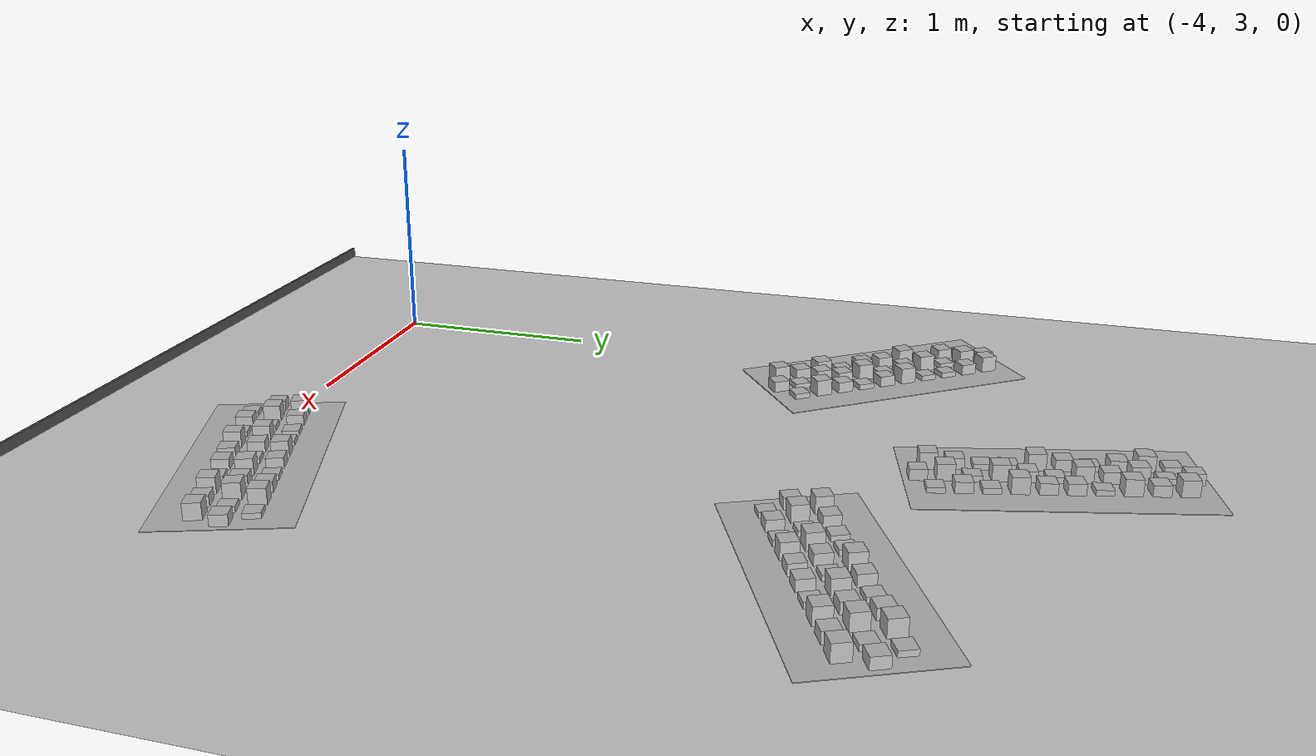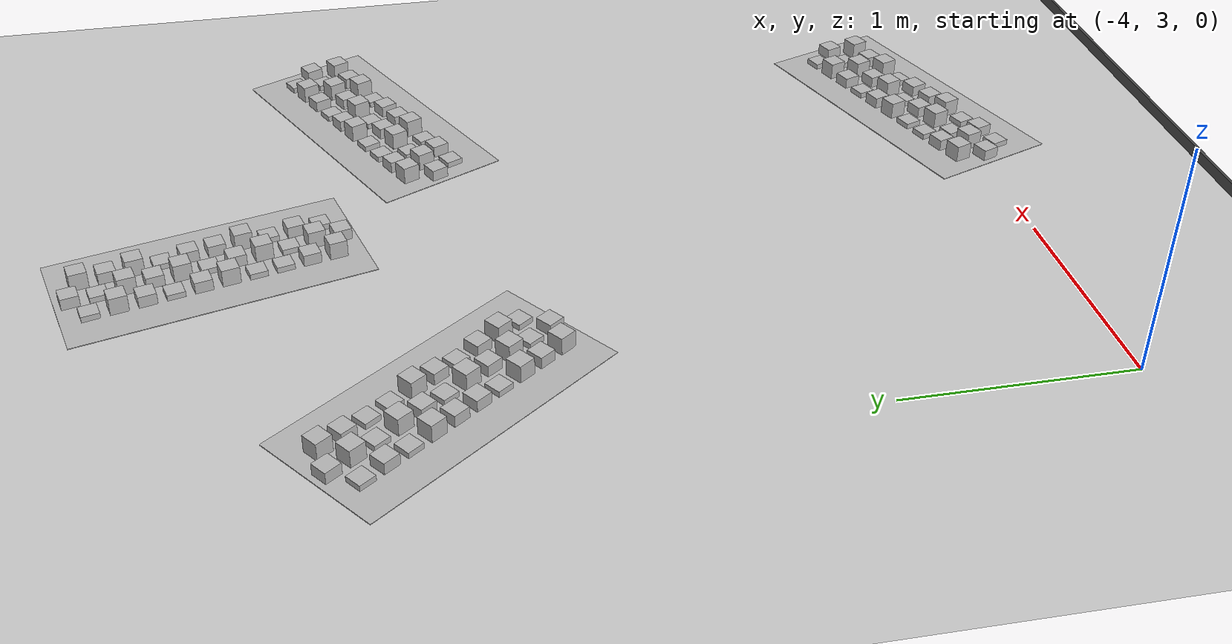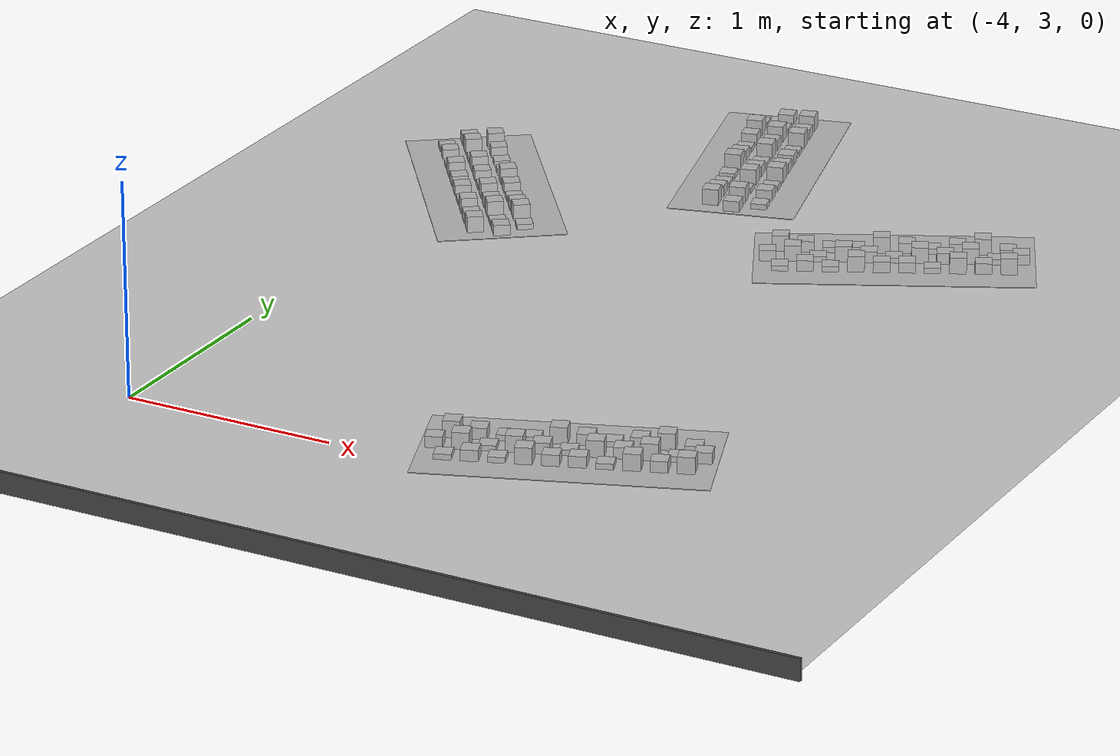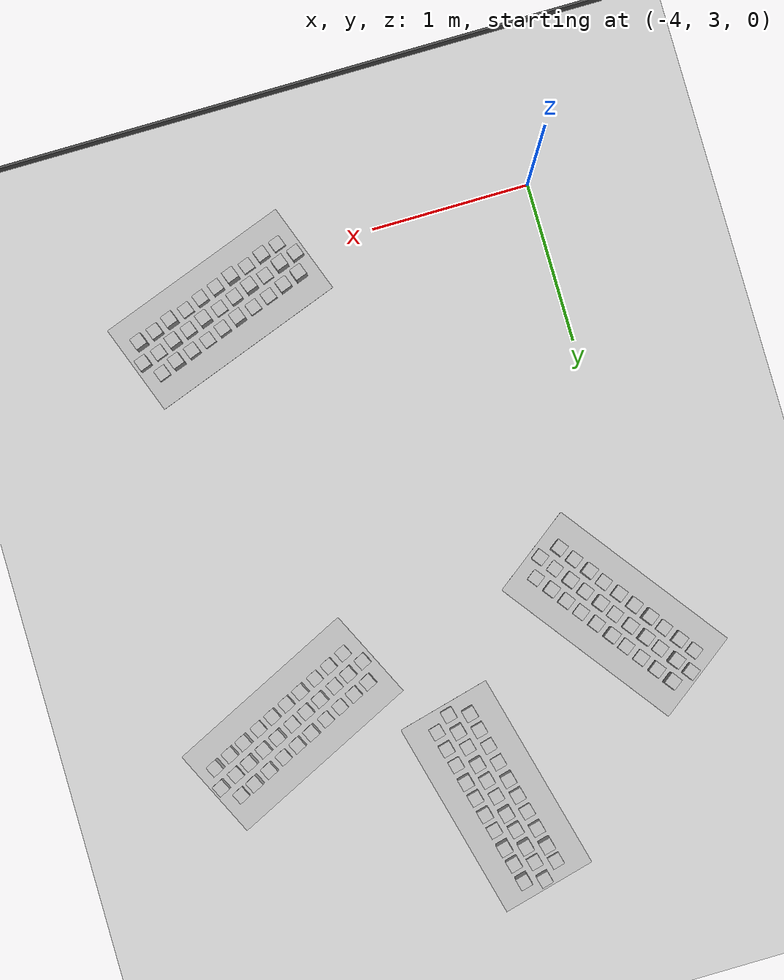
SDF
<sdf version="1.6">
 <world name="default">
  <model name="ground_plane">
   <static>1</static>
   <link name="link">
    <collision name="collision">
     <geometry><plane><normal>0 0 1</normal><size>100 100</size></plane></geometry>
     <surface>
      <contact><collide_bitmask>65535</collide_bitmask></contact>
      <friction><ode><mu>100</mu><mu2>50</mu2></ode></friction>
     </surface>
    </collision>
    <visual name="visual">
     <cast_shadows>0</cast_shadows>
     <geometry><plane><normal>0 0 1</normal><size>100 100</size></plane></geometry>
     <material>
      <script><uri>file://media/materials/scripts/gazebo.material</uri><name>Gazebo/Grey</name></script>
     </material>
    </visual>
   </link>
  </model>
  <model name="frc2016_roughterrain_clone_clone_12_clone_clone_clone_clone_clone_1">
   <static>1</static>
   <link name="link">
    <visual name="platform">
     <pose>0 0 0.08269 0 -0 0</pose>
     <geometry><box><size>1.27 0.5969 0.003175</size></box></geometry>
    </visual>
    <collision name="platform">
     <pose>0 0 0.08269 0 -0 0</pose>
     <geometry><box><size>1.27 0.5969 0.003175</size></box></geometry>
    </collision>
    <visual name="row1_block1_sm">
     <pose>0.51435 0.1143 0.09698 0 -0 0</pose>
     <geometry><box><size>0.0762 0.0762 0.0254</size></box></geometry>
    </visual>
    <collision name="row1_block1_sm">
     <pose>0.51435 0.1143 0.09698 0 -0 0</pose>
     <geometry><box><size>0.0762 0.0762 0.0254</size></box></geometry>
    </collision>
    <visual name="row1_block2_lg">
     <pose>0.40005 0.1143 0.12238 0 -0 0</pose>
     <geometry><box><size>0.0762 0.0762 0.0762</size></box></geometry>
    </visual>
    <collision name="row1_block2_lg">
     <pose>0.40005 0.1143 0.12238 0 -0 0</pose>
     <geometry><box><size>0.0762 0.0762 0.0762</size></box></geometry>
    </collision>
    <visual name="row1_block3_md">
     <pose>0.28575 0.1143 0.10968 0 -0 0</pose>
     <geometry><box><size>0.0762 0.0762 0.0508</size></box></geometry>
    </visual>
    <collision name="row1_block3_md">
     <pose>0.28575 0.1143 0.10968 0 -0 0</pose>
     <geometry><box><size>0.0762 0.0762 0.0508</size></box></geometry>
    </collision>
    <visual name="row1_block4_sm">
     <pose>0.17145 0.1143 0.09698 0 -0 0</pose>
     <geometry><box><size>0.0762 0.0762 0.0254</size></box></geometry>
    </visual>
    <collision name="row1_block4_sm">
     <pose>0.17145 0.1143 0.09698 0 -0 0</pose>
     <geometry><box><size>0.0762 0.0762 0.0254</size></box></geometry>
    </collision>
    <visual name="row1_block5_md">
     <pose>0.05715 0.1143 0.10968 0 -0 0</pose>
     <geometry><box><size>0.0762 0.0762 0.0508</size></box></geometry>
    </visual>
    <collision name="row1_block5_md">
     <pose>0.05715 0.1143 0.10968 0 -0 0</pose>
     <geometry><box><size>0.0762 0.0762 0.0508</size></box></geometry>
    </collision>
    <visual name="row1_block6_lg">
     <pose>-0.05715 0.1143 0.12238 0 -0 0</pose>
     <geometry><box><size>0.0762 0.0762 0.0762</size></box></geometry>
    </visual>
    <collision name="row1_block6_lg">
     <pose>-0.05715 0.1143 0.12238 0 -0 0</pose>
     <geometry><box><size>0.0762 0.0762 0.0762</size></box></geometry>
    </collision>
    <visual name="row1_block7_sm">
     <pose>-0.17145 0.1143 0.09698 0 -0 0</pose>
     <geometry><box><size>0.0762 0.0762 0.0254</size></box></geometry>
    </visual>
    <collision name="row1_block7_sm">
     <pose>-0.17145 0.1143 0.09698 0 -0 0</pose>
     <geometry><box><size>0.0762 0.0762 0.0254</size></box></geometry>
    </collision>
    <visual name="row1_block8_sm">
     <pose>-0.28575 0.1143 0.09698 0 -0 0</pose>
     <geometry><box><size>0.0762 0.0762 0.0254</size></box></geometry>
    </visual>
    <collision name="row1_block8_sm">
     <pose>-0.28575 0.1143 0.09698 0 -0 0</pose>
     <geometry><box><size>0.0762 0.0762 0.0254</size></box></geometry>
    </collision>
    <visual name="row1_block9_md">
     <pose>-0.40005 0.1143 0.10968 0 -0 0</pose>
     <geometry><box><size>0.0762 0.0762 0.0508</size></box></geometry>
    </visual>
    <collision name="row1_block9_md">
     <pose>-0.40005 0.1143 0.10968 0 -0 0</pose>
     <geometry><box><size>0.0762 0.0762 0.0508</size></box></geometry>
    </collision>
    <visual name="row1_block10_lg">
     <pose>-0.51435 0.1143 0.12238 0 -0 0</pose>
     <geometry><box><size>0.0762 0.0762 0.0762</size></box></geometry>
    </visual>
    <collision name="row1_block10_lg">
     <pose>-0.51435 0.1143 0.12238 0 -0 0</pose>
     <geometry><box><size>0.0762 0.0762 0.0762</size></box></geometry>
    </collision>
    <visual name="row2_block1_md">
     <pose>0.5715 0 0.10968 0 -0 0</pose>
     <geometry><box><size>0.0762 0.0762 0.0508</size></box></geometry>
    </visual>
    <collision name="row2_block1_md">
     <pose>0.5715 0 0.10968 0 -0 0</pose>
     <geometry><box><size>0.0762 0.0762 0.0508</size></box></geometry>
    </collision>
    <visual name="row2_block2_sm">
     <pose>0.4572 0 0.09698 0 -0 0</pose>
     <geometry><box><size>0.0762 0.0762 0.0254</size></box></geometry>
    </visual>
    <collision name="row2_block2_sm">
     <pose>0.4572 0 0.09698 0 -0 0</pose>
     <geometry><box><size>0.0762 0.0762 0.0254</size></box></geometry>
    </collision>
    <visual name="row2_block3_lg">
     <pose>0.3429 0 0.12238 0 -0 0</pose>
     <geometry><box><size>0.0762 0.0762 0.0762</size></box></geometry>
    </visual>
    <collision name="row2_block3_lg">
     <pose>0.3429 0 0.12238 0 -0 0</pose>
     <geometry><box><size>0.0762 0.0762 0.0762</size></box></geometry>
    </collision>
    <visual name="row2_block4_md">
     <pose>0.2286 0 0.10968 0 -0 0</pose>
     <geometry><box><size>0.0762 0.0762 0.0508</size></box></geometry>
    </visual>
    <collision name="row2_block4_md">
     <pose>0.2286 0 0.10968 0 -0 0</pose>
     <geometry><box><size>0.0762 0.0762 0.0508</size></box></geometry>
    </collision>
    <visual name="row2_block5_lg">
     <pose>0.1143 0 0.12238 0 -0 0</pose>
     <geometry><box><size>0.0762 0.0762 0.0762</size></box></geometry>
    </visual>
    <collision name="row2_block5_lg">
     <pose>0.1143 0 0.12238 0 -0 0</pose>
     <geometry><box><size>0.0762 0.0762 0.0762</size></box></geometry>
    </collision>
    <visual name="row2_block6_sm">
     <pose>0 0 0.09698 0 -0 0</pose>
     <geometry><box><size>0.0762 0.0762 0.0254</size></box></geometry>
    </visual>
    <collision name="row2_block6_sm">
     <pose>0 0 0.09698 0 -0 0</pose>
     <geometry><box><size>0.0762 0.0762 0.0254</size></box></geometry>
    </collision>
    <visual name="row2_block7_md">
     <pose>-0.1143 0 0.10968 0 -0 0</pose>
     <geometry><box><size>0.0762 0.0762 0.0508</size></box></geometry>
    </visual>
    <collision name="row2_block7_md">
     <pose>-0.1143 0 0.10968 0 -0 0</pose>
     <geometry><box><size>0.0762 0.0762 0.0508</size></box></geometry>
    </collision>
    <visual name="row2_block8_lg">
     <pose>-0.2286 0 0.12238 0 -0 0</pose>
     <geometry><box><size>0.0762 0.0762 0.0762</size></box></geometry>
    </visual>
    <collision name="row2_block8_lg">
     <pose>-0.2286 0 0.12238 0 -0 0</pose>
     <geometry><box><size>0.0762 0.0762 0.0762</size></box></geometry>
    </collision>
    <visual name="row2_block9_sm">
     <pose>-0.3429 0 0.09698 0 -0 0</pose>
     <geometry><box><size>0.0762 0.0762 0.0254</size></box></geometry>
    </visual>
    <collision name="row2_block9_sm">
     <pose>-0.3429 0 0.09698 0 -0 0</pose>
     <geometry><box><size>0.0762 0.0762 0.0254</size></box></geometry>
    </collision>
    <visual name="row2_block10_lg">
     <pose>-0.4572 0 0.12238 0 -0 0</pose>
     <geometry><box><size>0.0762 0.0762 0.0762</size></box></geometry>
    </visual>
    <collision name="row2_block10_lg">
     <pose>-0.4572 0 0.12238 0 -0 0</pose>
     <geometry><box><size>0.0762 0.0762 0.0762</size></box></geometry>
    </collision>
    <visual name="row2_block11_md">
     <pose>-0.5715 0 0.10968 0 -0 0</pose>
     <geometry><box><size>0.0762 0.0762 0.0508</size></box></geometry>
    </visual>
    <collision name="row2_block11_md">
     <pose>-0.5715 0 0.10968 0 -0 0</pose>
     <geometry><box><size>0.0762 0.0762 0.0508</size></box></geometry>
    </collision>
    <visual name="row3_block1_lg">
     <pose>0.51435 -0.1143 0.12238 0 -0 0</pose>
     <geometry><box><size>0.0762 0.0762 0.0762</size></box></geometry>
    </visual>
    <collision name="row3_block1_lg">
     <pose>0.51435 -0.1143 0.12238 0 -0 0</pose>
     <geometry><box><size>0.0762 0.0762 0.0762</size></box></geometry>
    </collision>
    <visual name="row3_block2_md">
     <pose>0.40005 -0.1143 0.10968 0 -0 0</pose>
     <geometry><box><size>0.0762 0.0762 0.0508</size></box></geometry>
    </visual>
    <collision name="row3_block2_md">
     <pose>0.40005 -0.1143 0.10968 0 -0 0</pose>
     <geometry><box><size>0.0762 0.0762 0.0508</size></box></geometry>
    </collision>
    <visual name="row3_block3_lg">
     <pose>0.28575 -0.1143 0.12238 0 -0 0</pose>
     <geometry><box><size>0.0762 0.0762 0.0762</size></box></geometry>
    </visual>
    <collision name="row3_block3_lg">
     <pose>0.28575 -0.1143 0.12238 0 -0 0</pose>
     <geometry><box><size>0.0762 0.0762 0.0762</size></box></geometry>
    </collision>
    <visual name="row3_block4_sm">
     <pose>0.17145 -0.1143 0.09698 0 -0 0</pose>
     <geometry><box><size>0.0762 0.0762 0.0254</size></box></geometry>
    </visual>
    <collision name="row3_block4_sm">
     <pose>0.17145 -0.1143 0.09698 0 -0 0</pose>
     <geometry><box><size>0.0762 0.0762 0.0254</size></box></geometry>
    </collision>
    <visual name="row3_block5_md">
     <pose>0.05715 -0.1143 0.10968 0 -0 0</pose>
     <geometry><box><size>0.0762 0.0762 0.0508</size></box></geometry>
    </visual>
    <collision name="row3_block5_md">
     <pose>0.05715 -0.1143 0.10968 0 -0 0</pose>
     <geometry><box><size>0.0762 0.0762 0.0508</size></box></geometry>
    </collision>
    <visual name="row3_block6_md">
     <pose>-0.05715 -0.1143 0.10968 0 -0 0</pose>
     <geometry><box><size>0.0762 0.0762 0.0508</size></box></geometry>
    </visual>
    <collision name="row3_block6_md">
     <pose>-0.05715 -0.1143 0.10968 0 -0 0</pose>
     <geometry><box><size>0.0762 0.0762 0.0508</size></box></geometry>
    </collision>
    <visual name="row3_block7_lg">
     <pose>-0.17145 -0.1143 0.12238 0 -0 0</pose>
     <geometry><box><size>0.0762 0.0762 0.0762</size></box></geometry>
    </visual>
    <collision name="row3_block7_lg">
     <pose>-0.17145 -0.1143 0.12238 0 -0 0</pose>
     <geometry><box><size>0.0762 0.0762 0.0762</size></box></geometry>
    </collision>
    <visual name="row3_block8_sm">
     <pose>-0.28575 -0.1143 0.09698 0 -0 0</pose>
     <geometry><box><size>0.0762 0.0762 0.0254</size></box></geometry>
    </visual>
    <collision name="row3_block8_sm">
     <pose>-0.28575 -0.1143 0.09698 0 -0 0</pose>
     <geometry><box><size>0.0762 0.0762 0.0254</size></box></geometry>
    </collision>
    <visual name="row3_block9_md">
     <pose>-0.40005 -0.1143 0.10968 0 -0 0</pose>
     <geometry><box><size>0.0762 0.0762 0.0508</size></box></geometry>
    </visual>
    <collision name="row3_block9_md">
     <pose>-0.40005 -0.1143 0.10968 0 -0 0</pose>
     <geometry><box><size>0.0762 0.0762 0.0508</size></box></geometry>
    </collision>
    <visual name="row3_block10_sm">
     <pose>-0.51435 -0.1143 0.09698 0 -0 0</pose>
     <geometry><box><size>0.0762 0.0762 0.0254</size></box></geometry>
    </visual>
    <collision name="row3_block10_sm">
     <pose>-0.51435 -0.1143 0.09698 0 -0 0</pose>
     <geometry><box><size>0.0762 0.0762 0.0254</size></box></geometry>
    </collision>
   </link>
   <pose>-1.96655 3.23326 0 0 -0 0.35</pose>
  </model>
  <model name="frc2016_roughterrain_clone_clone_12_clone_clone_clone_clone_0_clone">
   <static>1</static>
   <link name="link">
    <visual name="platform">
     <pose>0 0 0.08269 0 -0 0</pose>
     <geometry><box><size>1.27 0.5969 0.003175</size></box></geometry>
    </visual>
    <collision name="platform">
     <pose>0 0 0.08269 0 -0 0</pose>
     <geometry><box><size>1.27 0.5969 0.003175</size></box></geometry>
    </collision>
    <visual name="row1_block1_sm">
     <pose>0.51435 0.1143 0.09698 0 -0 0</pose>
     <geometry><box><size>0.0762 0.0762 0.0254</size></box></geometry>
    </visual>
    <collision name="row1_block1_sm">
     <pose>0.51435 0.1143 0.09698 0 -0 0</pose>
     <geometry><box><size>0.0762 0.0762 0.0254</size></box></geometry>
    </collision>
    <visual name="row1_block2_lg">
     <pose>0.40005 0.1143 0.12238 0 -0 0</pose>
     <geometry><box><size>0.0762 0.0762 0.0762</size></box></geometry>
    </visual>
    <collision name="row1_block2_lg">
     <pose>0.40005 0.1143 0.12238 0 -0 0</pose>
     <geometry><box><size>0.0762 0.0762 0.0762</size></box></geometry>
    </collision>
    <visual name="row1_block3_md">
     <pose>0.28575 0.1143 0.10968 0 -0 0</pose>
     <geometry><box><size>0.0762 0.0762 0.0508</size></box></geometry>
    </visual>
    <collision name="row1_block3_md">
     <pose>0.28575 0.1143 0.10968 0 -0 0</pose>
     <geometry><box><size>0.0762 0.0762 0.0508</size></box></geometry>
    </collision>
    <visual name="row1_block4_sm">
     <pose>0.17145 0.1143 0.09698 0 -0 0</pose>
     <geometry><box><size>0.0762 0.0762 0.0254</size></box></geometry>
    </visual>
    <collision name="row1_block4_sm">
     <pose>0.17145 0.1143 0.09698 0 -0 0</pose>
     <geometry><box><size>0.0762 0.0762 0.0254</size></box></geometry>
    </collision>
    <visual name="row1_block5_md">
     <pose>0.05715 0.1143 0.10968 0 -0 0</pose>
     <geometry><box><size>0.0762 0.0762 0.0508</size></box></geometry>
    </visual>
    <collision name="row1_block5_md">
     <pose>0.05715 0.1143 0.10968 0 -0 0</pose>
     <geometry><box><size>0.0762 0.0762 0.0508</size></box></geometry>
    </collision>
    <visual name="row1_block6_lg">
     <pose>-0.05715 0.1143 0.12238 0 -0 0</pose>
     <geometry><box><size>0.0762 0.0762 0.0762</size></box></geometry>
    </visual>
    <collision name="row1_block6_lg">
     <pose>-0.05715 0.1143 0.12238 0 -0 0</pose>
     <geometry><box><size>0.0762 0.0762 0.0762</size></box></geometry>
    </collision>
    <visual name="row1_block7_sm">
     <pose>-0.17145 0.1143 0.09698 0 -0 0</pose>
     <geometry><box><size>0.0762 0.0762 0.0254</size></box></geometry>
    </visual>
    <collision name="row1_block7_sm">
     <pose>-0.17145 0.1143 0.09698 0 -0 0</pose>
     <geometry><box><size>0.0762 0.0762 0.0254</size></box></geometry>
    </collision>
    <visual name="row1_block8_sm">
     <pose>-0.28575 0.1143 0.09698 0 -0 0</pose>
     <geometry><box><size>0.0762 0.0762 0.0254</size></box></geometry>
    </visual>
    <collision name="row1_block8_sm">
     <pose>-0.28575 0.1143 0.09698 0 -0 0</pose>
     <geometry><box><size>0.0762 0.0762 0.0254</size></box></geometry>
    </collision>
    <visual name="row1_block9_md">
     <pose>-0.40005 0.1143 0.10968 0 -0 0</pose>
     <geometry><box><size>0.0762 0.0762 0.0508</size></box></geometry>
    </visual>
    <collision name="row1_block9_md">
     <pose>-0.40005 0.1143 0.10968 0 -0 0</pose>
     <geometry><box><size>0.0762 0.0762 0.0508</size></box></geometry>
    </collision>
    <visual name="row1_block10_lg">
     <pose>-0.51435 0.1143 0.12238 0 -0 0</pose>
     <geometry><box><size>0.0762 0.0762 0.0762</size></box></geometry>
    </visual>
    <collision name="row1_block10_lg">
     <pose>-0.51435 0.1143 0.12238 0 -0 0</pose>
     <geometry><box><size>0.0762 0.0762 0.0762</size></box></geometry>
    </collision>
    <visual name="row2_block1_md">
     <pose>0.5715 0 0.10968 0 -0 0</pose>
     <geometry><box><size>0.0762 0.0762 0.0508</size></box></geometry>
    </visual>
    <collision name="row2_block1_md">
     <pose>0.5715 0 0.10968 0 -0 0</pose>
     <geometry><box><size>0.0762 0.0762 0.0508</size></box></geometry>
    </collision>
    <visual name="row2_block2_sm">
     <pose>0.4572 0 0.09698 0 -0 0</pose>
     <geometry><box><size>0.0762 0.0762 0.0254</size></box></geometry>
    </visual>
    <collision name="row2_block2_sm">
     <pose>0.4572 0 0.09698 0 -0 0</pose>
     <geometry><box><size>0.0762 0.0762 0.0254</size></box></geometry>
    </collision>
    <visual name="row2_block3_lg">
     <pose>0.3429 0 0.12238 0 -0 0</pose>
     <geometry><box><size>0.0762 0.0762 0.0762</size></box></geometry>
    </visual>
    <collision name="row2_block3_lg">
     <pose>0.3429 0 0.12238 0 -0 0</pose>
     <geometry><box><size>0.0762 0.0762 0.0762</size></box></geometry>
    </collision>
    <visual name="row2_block4_md">
     <pose>0.2286 0 0.10968 0 -0 0</pose>
     <geometry><box><size>0.0762 0.0762 0.0508</size></box></geometry>
    </visual>
    <collision name="row2_block4_md">
     <pose>0.2286 0 0.10968 0 -0 0</pose>
     <geometry><box><size>0.0762 0.0762 0.0508</size></box></geometry>
    </collision>
    <visual name="row2_block5_lg">
     <pose>0.1143 0 0.12238 0 -0 0</pose>
     <geometry><box><size>0.0762 0.0762 0.0762</size></box></geometry>
    </visual>
    <collision name="row2_block5_lg">
     <pose>0.1143 0 0.12238 0 -0 0</pose>
     <geometry><box><size>0.0762 0.0762 0.0762</size></box></geometry>
    </collision>
    <visual name="row2_block6_sm">
     <pose>0 0 0.09698 0 -0 0</pose>
     <geometry><box><size>0.0762 0.0762 0.0254</size></box></geometry>
    </visual>
    <collision name="row2_block6_sm">
     <pose>0 0 0.09698 0 -0 0</pose>
     <geometry><box><size>0.0762 0.0762 0.0254</size></box></geometry>
    </collision>
    <visual name="row2_block7_md">
     <pose>-0.1143 0 0.10968 0 -0 0</pose>
     <geometry><box><size>0.0762 0.0762 0.0508</size></box></geometry>
    </visual>
    <collision name="row2_block7_md">
     <pose>-0.1143 0 0.10968 0 -0 0</pose>
     <geometry><box><size>0.0762 0.0762 0.0508</size></box></geometry>
    </collision>
    <visual name="row2_block8_lg">
     <pose>-0.2286 0 0.12238 0 -0 0</pose>
     <geometry><box><size>0.0762 0.0762 0.0762</size></box></geometry>
    </visual>
    <collision name="row2_block8_lg">
     <pose>-0.2286 0 0.12238 0 -0 0</pose>
     <geometry><box><size>0.0762 0.0762 0.0762</size></box></geometry>
    </collision>
    <visual name="row2_block9_sm">
     <pose>-0.3429 0 0.09698 0 -0 0</pose>
     <geometry><box><size>0.0762 0.0762 0.0254</size></box></geometry>
    </visual>
    <collision name="row2_block9_sm">
     <pose>-0.3429 0 0.09698 0 -0 0</pose>
     <geometry><box><size>0.0762 0.0762 0.0254</size></box></geometry>
    </collision>
    <visual name="row2_block10_lg">
     <pose>-0.4572 0 0.12238 0 -0 0</pose>
     <geometry><box><size>0.0762 0.0762 0.0762</size></box></geometry>
    </visual>
    <collision name="row2_block10_lg">
     <pose>-0.4572 0 0.12238 0 -0 0</pose>
     <geometry><box><size>0.0762 0.0762 0.0762</size></box></geometry>
    </collision>
    <visual name="row2_block11_md">
     <pose>-0.5715 0 0.10968 0 -0 0</pose>
     <geometry><box><size>0.0762 0.0762 0.0508</size></box></geometry>
    </visual>
    <collision name="row2_block11_md">
     <pose>-0.5715 0 0.10968 0 -0 0</pose>
     <geometry><box><size>0.0762 0.0762 0.0508</size></box></geometry>
    </collision>
    <visual name="row3_block1_lg">
     <pose>0.51435 -0.1143 0.12238 0 -0 0</pose>
     <geometry><box><size>0.0762 0.0762 0.0762</size></box></geometry>
    </visual>
    <collision name="row3_block1_lg">
     <pose>0.51435 -0.1143 0.12238 0 -0 0</pose>
     <geometry><box><size>0.0762 0.0762 0.0762</size></box></geometry>
    </collision>
    <visual name="row3_block2_md">
     <pose>0.40005 -0.1143 0.10968 0 -0 0</pose>
     <geometry><box><size>0.0762 0.0762 0.0508</size></box></geometry>
    </visual>
    <collision name="row3_block2_md">
     <pose>0.40005 -0.1143 0.10968 0 -0 0</pose>
     <geometry><box><size>0.0762 0.0762 0.0508</size></box></geometry>
    </collision>
    <visual name="row3_block3_lg">
     <pose>0.28575 -0.1143 0.12238 0 -0 0</pose>
     <geometry><box><size>0.0762 0.0762 0.0762</size></box></geometry>
    </visual>
    <collision name="row3_block3_lg">
     <pose>0.28575 -0.1143 0.12238 0 -0 0</pose>
     <geometry><box><size>0.0762 0.0762 0.0762</size></box></geometry>
    </collision>
    <visual name="row3_block4_sm">
     <pose>0.17145 -0.1143 0.09698 0 -0 0</pose>
     <geometry><box><size>0.0762 0.0762 0.0254</size></box></geometry>
    </visual>
    <collision name="row3_block4_sm">
     <pose>0.17145 -0.1143 0.09698 0 -0 0</pose>
     <geometry><box><size>0.0762 0.0762 0.0254</size></box></geometry>
    </collision>
    <visual name="row3_block5_md">
     <pose>0.05715 -0.1143 0.10968 0 -0 0</pose>
     <geometry><box><size>0.0762 0.0762 0.0508</size></box></geometry>
    </visual>
    <collision name="row3_block5_md">
     <pose>0.05715 -0.1143 0.10968 0 -0 0</pose>
     <geometry><box><size>0.0762 0.0762 0.0508</size></box></geometry>
    </collision>
    <visual name="row3_block6_md">
     <pose>-0.05715 -0.1143 0.10968 0 -0 0</pose>
     <geometry><box><size>0.0762 0.0762 0.0508</size></box></geometry>
    </visual>
    <collision name="row3_block6_md">
     <pose>-0.05715 -0.1143 0.10968 0 -0 0</pose>
     <geometry><box><size>0.0762 0.0762 0.0508</size></box></geometry>
    </collision>
    <visual name="row3_block7_lg">
     <pose>-0.17145 -0.1143 0.12238 0 -0 0</pose>
     <geometry><box><size>0.0762 0.0762 0.0762</size></box></geometry>
    </visual>
    <collision name="row3_block7_lg">
     <pose>-0.17145 -0.1143 0.12238 0 -0 0</pose>
     <geometry><box><size>0.0762 0.0762 0.0762</size></box></geometry>
    </collision>
    <visual name="row3_block8_sm">
     <pose>-0.28575 -0.1143 0.09698 0 -0 0</pose>
     <geometry><box><size>0.0762 0.0762 0.0254</size></box></geometry>
    </visual>
    <collision name="row3_block8_sm">
     <pose>-0.28575 -0.1143 0.09698 0 -0 0</pose>
     <geometry><box><size>0.0762 0.0762 0.0254</size></box></geometry>
    </collision>
    <visual name="row3_block9_md">
     <pose>-0.40005 -0.1143 0.10968 0 -0 0</pose>
     <geometry><box><size>0.0762 0.0762 0.0508</size></box></geometry>
    </visual>
    <collision name="row3_block9_md">
     <pose>-0.40005 -0.1143 0.10968 0 -0 0</pose>
     <geometry><box><size>0.0762 0.0762 0.0508</size></box></geometry>
    </collision>
    <visual name="row3_block10_sm">
     <pose>-0.51435 -0.1143 0.09698 0 -0 0</pose>
     <geometry><box><size>0.0762 0.0762 0.0254</size></box></geometry>
    </visual>
    <collision name="row3_block10_sm">
     <pose>-0.51435 -0.1143 0.09698 0 -0 0</pose>
     <geometry><box><size>0.0762 0.0762 0.0254</size></box></geometry>
    </collision>
   </link>
   <pose>-1.69763 5.78592 0 0 -0 0.45</pose>
  </model>
  <model name="frc2016_roughterrain_clone_clone_12_clone_clone_clone_clone_0_clone_0">
   <static>1</static>
   <link name="link">
    <visual name="platform">
     <pose>0 0 0.08269 0 -0 0</pose>
     <geometry><box><size>1.27 0.5969 0.003175</size></box></geometry>
    </visual>
    <collision name="platform">
     <pose>0 0 0.08269 0 -0 0</pose>
     <geometry><box><size>1.27 0.5969 0.003175</size></box></geometry>
    </collision>
    <visual name="row1_block1_sm">
     <pose>0.51435 0.1143 0.09698 0 -0 0</pose>
     <geometry><box><size>0.0762 0.0762 0.0254</size></box></geometry>
    </visual>
    <collision name="row1_block1_sm">
     <pose>0.51435 0.1143 0.09698 0 -0 0</pose>
     <geometry><box><size>0.0762 0.0762 0.0254</size></box></geometry>
    </collision>
    <visual name="row1_block2_lg">
     <pose>0.40005 0.1143 0.12238 0 -0 0</pose>
     <geometry><box><size>0.0762 0.0762 0.0762</size></box></geometry>
    </visual>
    <collision name="row1_block2_lg">
     <pose>0.40005 0.1143 0.12238 0 -0 0</pose>
     <geometry><box><size>0.0762 0.0762 0.0762</size></box></geometry>
    </collision>
    <visual name="row1_block3_md">
     <pose>0.28575 0.1143 0.10968 0 -0 0</pose>
     <geometry><box><size>0.0762 0.0762 0.0508</size></box></geometry>
    </visual>
    <collision name="row1_block3_md">
     <pose>0.28575 0.1143 0.10968 0 -0 0</pose>
     <geometry><box><size>0.0762 0.0762 0.0508</size></box></geometry>
    </collision>
    <visual name="row1_block4_sm">
     <pose>0.17145 0.1143 0.09698 0 -0 0</pose>
     <geometry><box><size>0.0762 0.0762 0.0254</size></box></geometry>
    </visual>
    <collision name="row1_block4_sm">
     <pose>0.17145 0.1143 0.09698 0 -0 0</pose>
     <geometry><box><size>0.0762 0.0762 0.0254</size></box></geometry>
    </collision>
    <visual name="row1_block5_md">
     <pose>0.05715 0.1143 0.10968 0 -0 0</pose>
     <geometry><box><size>0.0762 0.0762 0.0508</size></box></geometry>
    </visual>
    <collision name="row1_block5_md">
     <pose>0.05715 0.1143 0.10968 0 -0 0</pose>
     <geometry><box><size>0.0762 0.0762 0.0508</size></box></geometry>
    </collision>
    <visual name="row1_block6_lg">
     <pose>-0.05715 0.1143 0.12238 0 -0 0</pose>
     <geometry><box><size>0.0762 0.0762 0.0762</size></box></geometry>
    </visual>
    <collision name="row1_block6_lg">
     <pose>-0.05715 0.1143 0.12238 0 -0 0</pose>
     <geometry><box><size>0.0762 0.0762 0.0762</size></box></geometry>
    </collision>
    <visual name="row1_block7_sm">
     <pose>-0.17145 0.1143 0.09698 0 -0 0</pose>
     <geometry><box><size>0.0762 0.0762 0.0254</size></box></geometry>
    </visual>
    <collision name="row1_block7_sm">
     <pose>-0.17145 0.1143 0.09698 0 -0 0</pose>
     <geometry><box><size>0.0762 0.0762 0.0254</size></box></geometry>
    </collision>
    <visual name="row1_block8_sm">
     <pose>-0.28575 0.1143 0.09698 0 -0 0</pose>
     <geometry><box><size>0.0762 0.0762 0.0254</size></box></geometry>
    </visual>
    <collision name="row1_block8_sm">
     <pose>-0.28575 0.1143 0.09698 0 -0 0</pose>
     <geometry><box><size>0.0762 0.0762 0.0254</size></box></geometry>
    </collision>
    <visual name="row1_block9_md">
     <pose>-0.40005 0.1143 0.10968 0 -0 0</pose>
     <geometry><box><size>0.0762 0.0762 0.0508</size></box></geometry>
    </visual>
    <collision name="row1_block9_md">
     <pose>-0.40005 0.1143 0.10968 0 -0 0</pose>
     <geometry><box><size>0.0762 0.0762 0.0508</size></box></geometry>
    </collision>
    <visual name="row1_block10_lg">
     <pose>-0.51435 0.1143 0.12238 0 -0 0</pose>
     <geometry><box><size>0.0762 0.0762 0.0762</size></box></geometry>
    </visual>
    <collision name="row1_block10_lg">
     <pose>-0.51435 0.1143 0.12238 0 -0 0</pose>
     <geometry><box><size>0.0762 0.0762 0.0762</size></box></geometry>
    </collision>
    <visual name="row2_block1_md">
     <pose>0.5715 0 0.10968 0 -0 0</pose>
     <geometry><box><size>0.0762 0.0762 0.0508</size></box></geometry>
    </visual>
    <collision name="row2_block1_md">
     <pose>0.5715 0 0.10968 0 -0 0</pose>
     <geometry><box><size>0.0762 0.0762 0.0508</size></box></geometry>
    </collision>
    <visual name="row2_block2_sm">
     <pose>0.4572 0 0.09698 0 -0 0</pose>
     <geometry><box><size>0.0762 0.0762 0.0254</size></box></geometry>
    </visual>
    <collision name="row2_block2_sm">
     <pose>0.4572 0 0.09698 0 -0 0</pose>
     <geometry><box><size>0.0762 0.0762 0.0254</size></box></geometry>
    </collision>
    <visual name="row2_block3_lg">
     <pose>0.3429 0 0.12238 0 -0 0</pose>
     <geometry><box><size>0.0762 0.0762 0.0762</size></box></geometry>
    </visual>
    <collision name="row2_block3_lg">
     <pose>0.3429 0 0.12238 0 -0 0</pose>
     <geometry><box><size>0.0762 0.0762 0.0762</size></box></geometry>
    </collision>
    <visual name="row2_block4_md">
     <pose>0.2286 0 0.10968 0 -0 0</pose>
     <geometry><box><size>0.0762 0.0762 0.0508</size></box></geometry>
    </visual>
    <collision name="row2_block4_md">
     <pose>0.2286 0 0.10968 0 -0 0</pose>
     <geometry><box><size>0.0762 0.0762 0.0508</size></box></geometry>
    </collision>
    <visual name="row2_block5_lg">
     <pose>0.1143 0 0.12238 0 -0 0</pose>
     <geometry><box><size>0.0762 0.0762 0.0762</size></box></geometry>
    </visual>
    <collision name="row2_block5_lg">
     <pose>0.1143 0 0.12238 0 -0 0</pose>
     <geometry><box><size>0.0762 0.0762 0.0762</size></box></geometry>
    </collision>
    <visual name="row2_block6_sm">
     <pose>0 0 0.09698 0 -0 0</pose>
     <geometry><box><size>0.0762 0.0762 0.0254</size></box></geometry>
    </visual>
    <collision name="row2_block6_sm">
     <pose>0 0 0.09698 0 -0 0</pose>
     <geometry><box><size>0.0762 0.0762 0.0254</size></box></geometry>
    </collision>
    <visual name="row2_block7_md">
     <pose>-0.1143 0 0.10968 0 -0 0</pose>
     <geometry><box><size>0.0762 0.0762 0.0508</size></box></geometry>
    </visual>
    <collision name="row2_block7_md">
     <pose>-0.1143 0 0.10968 0 -0 0</pose>
     <geometry><box><size>0.0762 0.0762 0.0508</size></box></geometry>
    </collision>
    <visual name="row2_block8_lg">
     <pose>-0.2286 0 0.12238 0 -0 0</pose>
     <geometry><box><size>0.0762 0.0762 0.0762</size></box></geometry>
    </visual>
    <collision name="row2_block8_lg">
     <pose>-0.2286 0 0.12238 0 -0 0</pose>
     <geometry><box><size>0.0762 0.0762 0.0762</size></box></geometry>
    </collision>
    <visual name="row2_block9_sm">
     <pose>-0.3429 0 0.09698 0 -0 0</pose>
     <geometry><box><size>0.0762 0.0762 0.0254</size></box></geometry>
    </visual>
    <collision name="row2_block9_sm">
     <pose>-0.3429 0 0.09698 0 -0 0</pose>
     <geometry><box><size>0.0762 0.0762 0.0254</size></box></geometry>
    </collision>
    <visual name="row2_block10_lg">
     <pose>-0.4572 0 0.12238 0 -0 0</pose>
     <geometry><box><size>0.0762 0.0762 0.0762</size></box></geometry>
    </visual>
    <collision name="row2_block10_lg">
     <pose>-0.4572 0 0.12238 0 -0 0</pose>
     <geometry><box><size>0.0762 0.0762 0.0762</size></box></geometry>
    </collision>
    <visual name="row2_block11_md">
     <pose>-0.5715 0 0.10968 0 -0 0</pose>
     <geometry><box><size>0.0762 0.0762 0.0508</size></box></geometry>
    </visual>
    <collision name="row2_block11_md">
     <pose>-0.5715 0 0.10968 0 -0 0</pose>
     <geometry><box><size>0.0762 0.0762 0.0508</size></box></geometry>
    </collision>
    <visual name="row3_block1_lg">
     <pose>0.51435 -0.1143 0.12238 0 -0 0</pose>
     <geometry><box><size>0.0762 0.0762 0.0762</size></box></geometry>
    </visual>
    <collision name="row3_block1_lg">
     <pose>0.51435 -0.1143 0.12238 0 -0 0</pose>
     <geometry><box><size>0.0762 0.0762 0.0762</size></box></geometry>
    </collision>
    <visual name="row3_block2_md">
     <pose>0.40005 -0.1143 0.10968 0 -0 0</pose>
     <geometry><box><size>0.0762 0.0762 0.0508</size></box></geometry>
    </visual>
    <collision name="row3_block2_md">
     <pose>0.40005 -0.1143 0.10968 0 -0 0</pose>
     <geometry><box><size>0.0762 0.0762 0.0508</size></box></geometry>
    </collision>
    <visual name="row3_block3_lg">
     <pose>0.28575 -0.1143 0.12238 0 -0 0</pose>
     <geometry><box><size>0.0762 0.0762 0.0762</size></box></geometry>
    </visual>
    <collision name="row3_block3_lg">
     <pose>0.28575 -0.1143 0.12238 0 -0 0</pose>
     <geometry><box><size>0.0762 0.0762 0.0762</size></box></geometry>
    </collision>
    <visual name="row3_block4_sm">
     <pose>0.17145 -0.1143 0.09698 0 -0 0</pose>
     <geometry><box><size>0.0762 0.0762 0.0254</size></box></geometry>
    </visual>
    <collision name="row3_block4_sm">
     <pose>0.17145 -0.1143 0.09698 0 -0 0</pose>
     <geometry><box><size>0.0762 0.0762 0.0254</size></box></geometry>
    </collision>
    <visual name="row3_block5_md">
     <pose>0.05715 -0.1143 0.10968 0 -0 0</pose>
     <geometry><box><size>0.0762 0.0762 0.0508</size></box></geometry>
    </visual>
    <collision name="row3_block5_md">
     <pose>0.05715 -0.1143 0.10968 0 -0 0</pose>
     <geometry><box><size>0.0762 0.0762 0.0508</size></box></geometry>
    </collision>
    <visual name="row3_block6_md">
     <pose>-0.05715 -0.1143 0.10968 0 -0 0</pose>
     <geometry><box><size>0.0762 0.0762 0.0508</size></box></geometry>
    </visual>
    <collision name="row3_block6_md">
     <pose>-0.05715 -0.1143 0.10968 0 -0 0</pose>
     <geometry><box><size>0.0762 0.0762 0.0508</size></box></geometry>
    </collision>
    <visual name="row3_block7_lg">
     <pose>-0.17145 -0.1143 0.12238 0 -0 0</pose>
     <geometry><box><size>0.0762 0.0762 0.0762</size></box></geometry>
    </visual>
    <collision name="row3_block7_lg">
     <pose>-0.17145 -0.1143 0.12238 0 -0 0</pose>
     <geometry><box><size>0.0762 0.0762 0.0762</size></box></geometry>
    </collision>
    <visual name="row3_block8_sm">
     <pose>-0.28575 -0.1143 0.09698 0 -0 0</pose>
     <geometry><box><size>0.0762 0.0762 0.0254</size></box></geometry>
    </visual>
    <collision name="row3_block8_sm">
     <pose>-0.28575 -0.1143 0.09698 0 -0 0</pose>
     <geometry><box><size>0.0762 0.0762 0.0254</size></box></geometry>
    </collision>
    <visual name="row3_block9_md">
     <pose>-0.40005 -0.1143 0.10968 0 -0 0</pose>
     <geometry><box><size>0.0762 0.0762 0.0508</size></box></geometry>
    </visual>
    <collision name="row3_block9_md">
     <pose>-0.40005 -0.1143 0.10968 0 -0 0</pose>
     <geometry><box><size>0.0762 0.0762 0.0508</size></box></geometry>
    </collision>
    <visual name="row3_block10_sm">
     <pose>-0.51435 -0.1143 0.09698 0 -0 0</pose>
     <geometry><box><size>0.0762 0.0762 0.0254</size></box></geometry>
    </visual>
    <collision name="row3_block10_sm">
     <pose>-0.51435 -0.1143 0.09698 0 -0 0</pose>
     <geometry><box><size>0.0762 0.0762 0.0254</size></box></geometry>
    </collision>
   </link>
   <pose>-2.76367 6.54655 0 0 -0 1.82</pose>
  </model>
  <model name="frc2016_roughterrain_clone_clone_12_clone_clone_clone_clone_clone_clone_0_clone">
   <static>1</static>
   <link name="link">
    <visual name="platform">
     <pose>0 0 0.08269 0 -0 0</pose>
     <geometry><box><size>1.27 0.5969 0.003175</size></box></geometry>
    </visual>
    <collision name="platform">
     <pose>0 0 0.08269 0 -0 0</pose>
     <geometry><box><size>1.27 0.5969 0.003175</size></box></geometry>
    </collision>
    <visual name="row1_block1_sm">
     <pose>0.51435 0.1143 0.09698 0 -0 0</pose>
     <geometry><box><size>0.0762 0.0762 0.0254</size></box></geometry>
    </visual>
    <collision name="row1_block1_sm">
     <pose>0.51435 0.1143 0.09698 0 -0 0</pose>
     <geometry><box><size>0.0762 0.0762 0.0254</size></box></geometry>
    </collision>
    <visual name="row1_block2_lg">
     <pose>0.40005 0.1143 0.12238 0 -0 0</pose>
     <geometry><box><size>0.0762 0.0762 0.0762</size></box></geometry>
    </visual>
    <collision name="row1_block2_lg">
     <pose>0.40005 0.1143 0.12238 0 -0 0</pose>
     <geometry><box><size>0.0762 0.0762 0.0762</size></box></geometry>
    </collision>
    <visual name="row1_block3_md">
     <pose>0.28575 0.1143 0.10968 0 -0 0</pose>
     <geometry><box><size>0.0762 0.0762 0.0508</size></box></geometry>
    </visual>
    <collision name="row1_block3_md">
     <pose>0.28575 0.1143 0.10968 0 -0 0</pose>
     <geometry><box><size>0.0762 0.0762 0.0508</size></box></geometry>
    </collision>
    <visual name="row1_block4_sm">
     <pose>0.17145 0.1143 0.09698 0 -0 0</pose>
     <geometry><box><size>0.0762 0.0762 0.0254</size></box></geometry>
    </visual>
    <collision name="row1_block4_sm">
     <pose>0.17145 0.1143 0.09698 0 -0 0</pose>
     <geometry><box><size>0.0762 0.0762 0.0254</size></box></geometry>
    </collision>
    <visual name="row1_block5_md">
     <pose>0.05715 0.1143 0.10968 0 -0 0</pose>
     <geometry><box><size>0.0762 0.0762 0.0508</size></box></geometry>
    </visual>
    <collision name="row1_block5_md">
     <pose>0.05715 0.1143 0.10968 0 -0 0</pose>
     <geometry><box><size>0.0762 0.0762 0.0508</size></box></geometry>
    </collision>
    <visual name="row1_block6_lg">
     <pose>-0.05715 0.1143 0.12238 0 -0 0</pose>
     <geometry><box><size>0.0762 0.0762 0.0762</size></box></geometry>
    </visual>
    <collision name="row1_block6_lg">
     <pose>-0.05715 0.1143 0.12238 0 -0 0</pose>
     <geometry><box><size>0.0762 0.0762 0.0762</size></box></geometry>
    </collision>
    <visual name="row1_block7_sm">
     <pose>-0.17145 0.1143 0.09698 0 -0 0</pose>
     <geometry><box><size>0.0762 0.0762 0.0254</size></box></geometry>
    </visual>
    <collision name="row1_block7_sm">
     <pose>-0.17145 0.1143 0.09698 0 -0 0</pose>
     <geometry><box><size>0.0762 0.0762 0.0254</size></box></geometry>
    </collision>
    <visual name="row1_block8_sm">
     <pose>-0.28575 0.1143 0.09698 0 -0 0</pose>
     <geometry><box><size>0.0762 0.0762 0.0254</size></box></geometry>
    </visual>
    <collision name="row1_block8_sm">
     <pose>-0.28575 0.1143 0.09698 0 -0 0</pose>
     <geometry><box><size>0.0762 0.0762 0.0254</size></box></geometry>
    </collision>
    <visual name="row1_block9_md">
     <pose>-0.40005 0.1143 0.10968 0 -0 0</pose>
     <geometry><box><size>0.0762 0.0762 0.0508</size></box></geometry>
    </visual>
    <collision name="row1_block9_md">
     <pose>-0.40005 0.1143 0.10968 0 -0 0</pose>
     <geometry><box><size>0.0762 0.0762 0.0508</size></box></geometry>
    </collision>
    <visual name="row1_block10_lg">
     <pose>-0.51435 0.1143 0.12238 0 -0 0</pose>
     <geometry><box><size>0.0762 0.0762 0.0762</size></box></geometry>
    </visual>
    <collision name="row1_block10_lg">
     <pose>-0.51435 0.1143 0.12238 0 -0 0</pose>
     <geometry><box><size>0.0762 0.0762 0.0762</size></box></geometry>
    </collision>
    <visual name="row2_block1_md">
     <pose>0.5715 0 0.10968 0 -0 0</pose>
     <geometry><box><size>0.0762 0.0762 0.0508</size></box></geometry>
    </visual>
    <collision name="row2_block1_md">
     <pose>0.5715 0 0.10968 0 -0 0</pose>
     <geometry><box><size>0.0762 0.0762 0.0508</size></box></geometry>
    </collision>
    <visual name="row2_block2_sm">
     <pose>0.4572 0 0.09698 0 -0 0</pose>
     <geometry><box><size>0.0762 0.0762 0.0254</size></box></geometry>
    </visual>
    <collision name="row2_block2_sm">
     <pose>0.4572 0 0.09698 0 -0 0</pose>
     <geometry><box><size>0.0762 0.0762 0.0254</size></box></geometry>
    </collision>
    <visual name="row2_block3_lg">
     <pose>0.3429 0 0.12238 0 -0 0</pose>
     <geometry><box><size>0.0762 0.0762 0.0762</size></box></geometry>
    </visual>
    <collision name="row2_block3_lg">
     <pose>0.3429 0 0.12238 0 -0 0</pose>
     <geometry><box><size>0.0762 0.0762 0.0762</size></box></geometry>
    </collision>
    <visual name="row2_block4_md">
     <pose>0.2286 0 0.10968 0 -0 0</pose>
     <geometry><box><size>0.0762 0.0762 0.0508</size></box></geometry>
    </visual>
    <collision name="row2_block4_md">
     <pose>0.2286 0 0.10968 0 -0 0</pose>
     <geometry><box><size>0.0762 0.0762 0.0508</size></box></geometry>
    </collision>
    <visual name="row2_block5_lg">
     <pose>0.1143 0 0.12238 0 -0 0</pose>
     <geometry><box><size>0.0762 0.0762 0.0762</size></box></geometry>
    </visual>
    <collision name="row2_block5_lg">
     <pose>0.1143 0 0.12238 0 -0 0</pose>
     <geometry><box><size>0.0762 0.0762 0.0762</size></box></geometry>
    </collision>
    <visual name="row2_block6_sm">
     <pose>0 0 0.09698 0 -0 0</pose>
     <geometry><box><size>0.0762 0.0762 0.0254</size></box></geometry>
    </visual>
    <collision name="row2_block6_sm">
     <pose>0 0 0.09698 0 -0 0</pose>
     <geometry><box><size>0.0762 0.0762 0.0254</size></box></geometry>
    </collision>
    <visual name="row2_block7_md">
     <pose>-0.1143 0 0.10968 0 -0 0</pose>
     <geometry><box><size>0.0762 0.0762 0.0508</size></box></geometry>
    </visual>
    <collision name="row2_block7_md">
     <pose>-0.1143 0 0.10968 0 -0 0</pose>
     <geometry><box><size>0.0762 0.0762 0.0508</size></box></geometry>
    </collision>
    <visual name="row2_block8_lg">
     <pose>-0.2286 0 0.12238 0 -0 0</pose>
     <geometry><box><size>0.0762 0.0762 0.0762</size></box></geometry>
    </visual>
    <collision name="row2_block8_lg">
     <pose>-0.2286 0 0.12238 0 -0 0</pose>
     <geometry><box><size>0.0762 0.0762 0.0762</size></box></geometry>
    </collision>
    <visual name="row2_block9_sm">
     <pose>-0.3429 0 0.09698 0 -0 0</pose>
     <geometry><box><size>0.0762 0.0762 0.0254</size></box></geometry>
    </visual>
    <collision name="row2_block9_sm">
     <pose>-0.3429 0 0.09698 0 -0 0</pose>
     <geometry><box><size>0.0762 0.0762 0.0254</size></box></geometry>
    </collision>
    <visual name="row2_block10_lg">
     <pose>-0.4572 0 0.12238 0 -0 0</pose>
     <geometry><box><size>0.0762 0.0762 0.0762</size></box></geometry>
    </visual>
    <collision name="row2_block10_lg">
     <pose>-0.4572 0 0.12238 0 -0 0</pose>
     <geometry><box><size>0.0762 0.0762 0.0762</size></box></geometry>
    </collision>
    <visual name="row2_block11_md">
     <pose>-0.5715 0 0.10968 0 -0 0</pose>
     <geometry><box><size>0.0762 0.0762 0.0508</size></box></geometry>
    </visual>
    <collision name="row2_block11_md">
     <pose>-0.5715 0 0.10968 0 -0 0</pose>
     <geometry><box><size>0.0762 0.0762 0.0508</size></box></geometry>
    </collision>
    <visual name="row3_block1_lg">
     <pose>0.51435 -0.1143 0.12238 0 -0 0</pose>
     <geometry><box><size>0.0762 0.0762 0.0762</size></box></geometry>
    </visual>
    <collision name="row3_block1_lg">
     <pose>0.51435 -0.1143 0.12238 0 -0 0</pose>
     <geometry><box><size>0.0762 0.0762 0.0762</size></box></geometry>
    </collision>
    <visual name="row3_block2_md">
     <pose>0.40005 -0.1143 0.10968 0 -0 0</pose>
     <geometry><box><size>0.0762 0.0762 0.0508</size></box></geometry>
    </visual>
    <collision name="row3_block2_md">
     <pose>0.40005 -0.1143 0.10968 0 -0 0</pose>
     <geometry><box><size>0.0762 0.0762 0.0508</size></box></geometry>
    </collision>
    <visual name="row3_block3_lg">
     <pose>0.28575 -0.1143 0.12238 0 -0 0</pose>
     <geometry><box><size>0.0762 0.0762 0.0762</size></box></geometry>
    </visual>
    <collision name="row3_block3_lg">
     <pose>0.28575 -0.1143 0.12238 0 -0 0</pose>
     <geometry><box><size>0.0762 0.0762 0.0762</size></box></geometry>
    </collision>
    <visual name="row3_block4_sm">
     <pose>0.17145 -0.1143 0.09698 0 -0 0</pose>
     <geometry><box><size>0.0762 0.0762 0.0254</size></box></geometry>
    </visual>
    <collision name="row3_block4_sm">
     <pose>0.17145 -0.1143 0.09698 0 -0 0</pose>
     <geometry><box><size>0.0762 0.0762 0.0254</size></box></geometry>
    </collision>
    <visual name="row3_block5_md">
     <pose>0.05715 -0.1143 0.10968 0 -0 0</pose>
     <geometry><box><size>0.0762 0.0762 0.0508</size></box></geometry>
    </visual>
    <collision name="row3_block5_md">
     <pose>0.05715 -0.1143 0.10968 0 -0 0</pose>
     <geometry><box><size>0.0762 0.0762 0.0508</size></box></geometry>
    </collision>
    <visual name="row3_block6_md">
     <pose>-0.05715 -0.1143 0.10968 0 -0 0</pose>
     <geometry><box><size>0.0762 0.0762 0.0508</size></box></geometry>
    </visual>
    <collision name="row3_block6_md">
     <pose>-0.05715 -0.1143 0.10968 0 -0 0</pose>
     <geometry><box><size>0.0762 0.0762 0.0508</size></box></geometry>
    </collision>
    <visual name="row3_block7_lg">
     <pose>-0.17145 -0.1143 0.12238 0 -0 0</pose>
     <geometry><box><size>0.0762 0.0762 0.0762</size></box></geometry>
    </visual>
    <collision name="row3_block7_lg">
     <pose>-0.17145 -0.1143 0.12238 0 -0 0</pose>
     <geometry><box><size>0.0762 0.0762 0.0762</size></box></geometry>
    </collision>
    <visual name="row3_block8_sm">
     <pose>-0.28575 -0.1143 0.09698 0 -0 0</pose>
     <geometry><box><size>0.0762 0.0762 0.0254</size></box></geometry>
    </visual>
    <collision name="row3_block8_sm">
     <pose>-0.28575 -0.1143 0.09698 0 -0 0</pose>
     <geometry><box><size>0.0762 0.0762 0.0254</size></box></geometry>
    </collision>
    <visual name="row3_block9_md">
     <pose>-0.40005 -0.1143 0.10968 0 -0 0</pose>
     <geometry><box><size>0.0762 0.0762 0.0508</size></box></geometry>
    </visual>
    <collision name="row3_block9_md">
     <pose>-0.40005 -0.1143 0.10968 0 -0 0</pose>
     <geometry><box><size>0.0762 0.0762 0.0508</size></box></geometry>
    </collision>
    <visual name="row3_block10_sm">
     <pose>-0.51435 -0.1143 0.09698 0 -0 0</pose>
     <geometry><box><size>0.0762 0.0762 0.0254</size></box></geometry>
    </visual>
    <collision name="row3_block10_sm">
     <pose>-0.51435 -0.1143 0.09698 0 -0 0</pose>
     <geometry><box><size>0.0762 0.0762 0.0254</size></box></geometry>
    </collision>
   </link>
   <pose>-3.76181 5.68871 0 0 0 -0.929189</pose>
  </model>
  <model name="asphalt_plane">
   <static>1</static>
   <link name="link">
    <collision name="collision"><geometry><box><size>20 20 0.1</size></box></geometry></collision>
    <visual name="visual">
     <cast_shadows>0</cast_shadows>
     <geometry><box><size>20 20 0.1</size></box></geometry>
     <material>
      <script>
       <uri>model://asphalt_plane/materials/scripts</uri>
       <uri>model://asphalt_plane/materials/textures</uri>
       <name>vrc/asphalt</name>
      </script>
     </material>
    </visual>
   </link>
   <pose>-0.308483 -7.98775 0 0 -0 0</pose>
  </model>
 </world>
</sdf>
